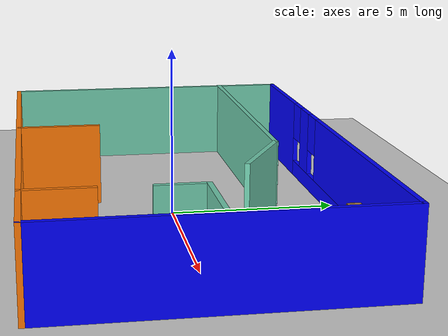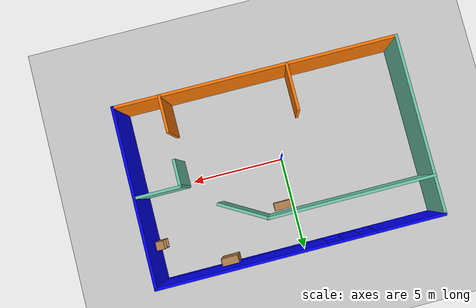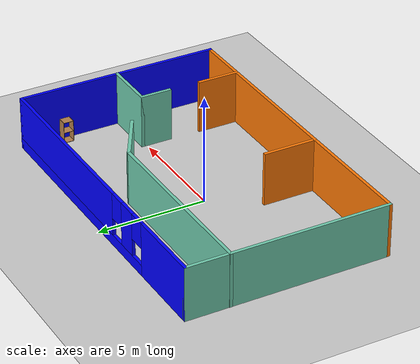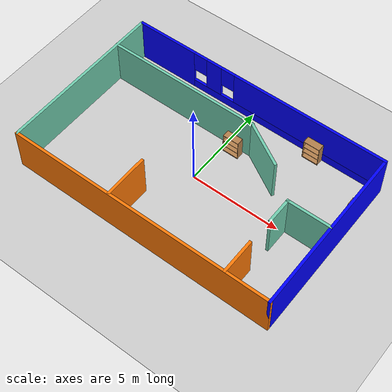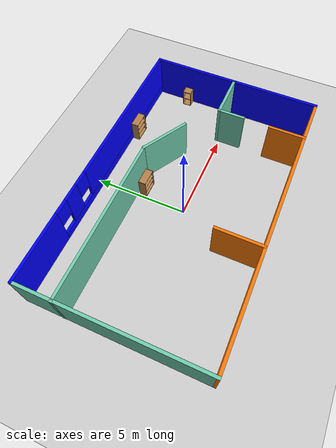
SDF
<sdf version="1.6">
 <world name="default">
  <light name="sun" type="directional">
   <pose>0 0 10 0 -0 0</pose>
   <diffuse>0.8 0.8 0.8 1</diffuse>
   <specular>0.2 0.2 0.2 1</specular>
   <attenuation>
    <range>1000</range>
    <constant>0.9</constant>
    <linear>0.01</linear>
    <quadratic>0.001</quadratic>
   </attenuation>
   <direction>-0.5 0.1 -0.9</direction>
  </light>
  <model name="ground_plane">
   <static>1</static>
   <link name="link">
    <collision name="collision">
     <geometry><plane><normal>0 0 1</normal><size>100 100</size></plane></geometry>
     <surface>
      <contact><collide_bitmask>65535</collide_bitmask></contact>
      <friction><ode><mu>100</mu><mu2>50</mu2></ode></friction>
     </surface>
    </collision>
    <visual name="visual">
     <cast_shadows>0</cast_shadows>
     <geometry><plane><normal>0 0 1</normal><size>100 100</size></plane></geometry>
     <material>
      <script><uri>file://media/materials/scripts/gazebo.material</uri><name>Gazebo/Grey</name></script>
     </material>
    </visual>
   </link>
  </model>
  <gravity>0 0 -9.8</gravity>
  <magnetic_field>6e-06 2.3e-05 -4.2e-05</magnetic_field>
  <atmosphere type="adiabatic"/>
  <physics name="default_physics" default="0" type="ode">
   <max_step_size>0.001</max_step_size>
   <real_time_factor>1</real_time_factor>
   <real_time_update_rate>1000</real_time_update_rate>
  </physics>
  <scene><ambient>0.4 0.4 0.4 1</ambient><background>0.7 0.7 0.7 1</background><shadows>1</shadows></scene>
  <spherical_coordinates>
   <surface_model>EARTH_WGS84</surface_model>
   <latitude_deg>0</latitude_deg>
   <longitude_deg>0</longitude_deg>
   <elevation>0</elevation>
   <heading_deg>0</heading_deg>
  </spherical_coordinates>
  <model name="building">
   <pose>0.231574 0.143373 0 0 -0 0</pose>
   <link name="Wall_10">
    <collision name="Wall_10_Collision">
     <geometry><box><size>9.5 0.15 2.5</size></box></geometry>
     <pose>0 0 1.25 0 -0 0</pose>
    </collision>
    <visual name="Wall_10_Visual">
     <pose>0 0 1.25 0 -0 0</pose>
     <geometry><box><size>9.5 0.15 2.5</size></box></geometry>
     <material>
      <script><uri>file://media/materials/scripts/gazebo.material</uri><name>Gazebo/Grey</name></script>
      <ambient>0 0 1 1</ambient>
     </material>
     <meta><layer>0</layer></meta>
    </visual>
    <pose>7.43187 0 0 0 0 -1.5708</pose>
   </link>
   <link name="Wall_12">
    <collision name="Wall_12_Collision">
     <geometry><box><size>2 0.15 2.5</size></box></geometry>
     <pose>0 0 1.25 0 -0 0</pose>
    </collision>
    <visual name="Wall_12_Visual">
     <pose>0 0 1.25 0 -0 0</pose>
     <geometry><box><size>2 0.15 2.5</size></box></geometry>
     <material>
      <script><uri>file://media/materials/scripts/gazebo.material</uri><name>Gazebo/Grey</name></script>
      <ambient>0.996078 0.47451 0.0196078 1</ambient>
     </material>
     <meta><layer>0</layer></meta>
    </visual>
    <pose>5.01414 -3.74938 0 0 -0 1.5708</pose>
   </link>
   <link name="Wall_16">
    <collision name="Wall_16_Collision">
     <geometry><box><size>2.5 0.15 2.5</size></box></geometry>
     <pose>0 0 1.25 0 -0 0</pose>
    </collision>
    <visual name="Wall_16_Visual">
     <pose>0 0 1.25 0 -0 0</pose>
     <geometry><box><size>2.5 0.15 2.5</size></box></geometry>
     <material>
      <script><uri>file://media/materials/scripts/gazebo.material</uri><name>Gazebo/Grey</name></script>
      <ambient>0.435294 0.796078 0.67451 1</ambient>
     </material>
     <meta><layer>0</layer></meta>
    </visual>
    <pose>6.24248 0.034966 0 0 -0 3.14159</pose>
   </link>
   <link name="Wall_17">
    <collision name="Wall_17_Collision">
     <geometry><box><size>1.5 0.15 2.5</size></box></geometry>
     <pose>0 0 1.25 0 -0 0</pose>
    </collision>
    <visual name="Wall_17_Visual">
     <pose>0 0 1.25 0 -0 0</pose>
     <geometry><box><size>1.5 0.15 2.5</size></box></geometry>
     <material>
      <script><uri>file://media/materials/scripts/gazebo.material</uri><name>Gazebo/Grey</name></script>
      <ambient>0.435294 0.796078 0.67451 1</ambient>
     </material>
     <meta><layer>0</layer></meta>
    </visual>
    <pose>5.06748 -0.640034 0 0 0 -1.5708</pose>
   </link>
   <link name="Wall_2">
    <collision name="Wall_2_Collision">
     <geometry><box><size>15 0.15 2.5</size></box></geometry>
     <pose>0 0 1.25 0 -0 0</pose>
    </collision>
    <visual name="Wall_2_Visual">
     <pose>0 0 1.25 0 -0 0</pose>
     <geometry><box><size>15 0.15 2.5</size></box></geometry>
     <material>
      <script><uri>file://media/materials/scripts/gazebo.material</uri><name>Gazebo/Grey</name></script>
      <ambient>0.996078 0.47451 0.0196078 1</ambient>
     </material>
     <meta><layer>0</layer></meta>
    </visual>
    <pose>0.006868 -4.675 0 0 -0 0</pose>
   </link>
   <link name="Wall_22">
    <collision name="Wall_22_Collision">
     <geometry><box><size>8.75 0.15 2.5</size></box></geometry>
     <pose>0 0 1.25 0 -0 0</pose>
    </collision>
    <visual name="Wall_22_Visual">
     <pose>0 0 1.25 0 -0 0</pose>
     <geometry><box><size>8.75 0.15 2.5</size></box></geometry>
     <material>
      <script><uri>file://media/materials/scripts/gazebo.material</uri><name>Gazebo/Grey</name></script>
      <ambient>0.435294 0.796078 0.67451 1</ambient>
     </material>
     <meta><layer>0</layer></meta>
    </visual>
    <pose>-3.13187 2.67382 0 0 -0 0</pose>
   </link>
   <link name="Wall_23">
    <collision name="Wall_23_Collision">
     <geometry><box><size>2.75 0.15 2.5</size></box></geometry>
     <pose>0 0 1.25 0 -0 0</pose>
    </collision>
    <visual name="Wall_23_Visual">
     <pose>0 0 1.25 0 -0 0</pose>
     <geometry><box><size>2.75 0.15 2.5</size></box></geometry>
     <material>
      <script><uri>file://media/materials/scripts/gazebo.material</uri><name>Gazebo/Grey</name></script>
      <ambient>0.435294 0.796078 0.67451 1</ambient>
     </material>
     <meta><layer>0</layer></meta>
    </visual>
    <pose>2.29396 2.02382 0 0 0 -0.523599</pose>
   </link>
   <link name="Wall_28">
    <collision name="Wall_28_Collision">
     <geometry><box><size>2.5 0.15 2.5</size></box></geometry>
     <pose>0 0 1.25 0 -0 0</pose>
    </collision>
    <visual name="Wall_28_Visual">
     <pose>0 0 1.25 0 -0 0</pose>
     <geometry><box><size>2.5 0.15 2.5</size></box></geometry>
     <material>
      <script><uri>file://media/materials/scripts/gazebo.material</uri><name>Gazebo/Grey</name></script>
      <ambient>0.996078 0.47451 0.0196078 1</ambient>
     </material>
     <meta><layer>0</layer></meta>
    </visual>
    <pose>-1.64634 -3.45269 0 0 -0 1.5708</pose>
   </link>
   <link name="Wall_7">
    <collision name="Wall_7_Collision">
     <geometry><box><size>9.5 0.15 2.5</size></box></geometry>
     <pose>0 0 1.25 0 -0 0</pose>
    </collision>
    <visual name="Wall_7_Visual">
     <pose>0 0 1.25 0 -0 0</pose>
     <geometry><box><size>9.5 0.15 2.5</size></box></geometry>
     <material>
      <script><uri>file://media/materials/scripts/gazebo.material</uri><name>Gazebo/Grey</name></script>
      <ambient>0.435294 0.796078 0.67451 1</ambient>
     </material>
     <meta><layer>0</layer></meta>
    </visual>
    <pose>-7.41813 0 0 0 -0 1.5708</pose>
   </link>
   <link name="Wall_8">
    <pose>0.006868 4.675 0 0 -0 0</pose>
    <visual name="Wall_8_Visual_0">
     <pose>-5.69815 0 1.25 0 -0 0</pose>
     <geometry><box><size>3.6037 0.15 2.5</size></box></geometry>
     <material>
      <script><uri>file://media/materials/scripts/gazebo.material</uri><name>Gazebo/Grey</name></script>
      <ambient>0 0 1 1</ambient>
     </material>
     <meta><layer>0</layer></meta>
    </visual>
    <collision name="Wall_8_Collision_0">
     <geometry><box><size>3.6037 0.15 2.5</size></box></geometry>
     <pose>-5.69815 0 1.25 0 -0 0</pose>
    </collision>
    <visual name="Wall_8_Visual_1">
     <pose>1.80185 0 0.25 0 -0 0</pose>
     <geometry><box><size>11.3963 0.15 0.5</size></box></geometry>
     <material>
      <script><uri>file://media/materials/scripts/gazebo.material</uri><name>Gazebo/Grey</name></script>
      <ambient>0 0 1 1</ambient>
     </material>
     <meta><layer>0</layer></meta>
    </visual>
    <collision name="Wall_8_Collision_1">
     <geometry><box><size>11.3963 0.15 0.5</size></box></geometry>
     <pose>1.80185 0 0.25 0 -0 0</pose>
    </collision>
    <visual name="Wall_8_Visual_2">
     <pose>-2.63174 0 1.5 0 -0 0</pose>
     <geometry><box><size>0.929126 0.15 2</size></box></geometry>
     <material>
      <script><uri>file://media/materials/scripts/gazebo.material</uri><name>Gazebo/Grey</name></script>
      <ambient>0 0 1 1</ambient>
     </material>
     <meta><layer>0</layer></meta>
    </visual>
    <collision name="Wall_8_Collision_2">
     <geometry><box><size>0.929126 0.15 2</size></box></geometry>
     <pose>-2.63174 0 1.5 0 -0 0</pose>
    </collision>
    <visual name="Wall_8_Visual_3">
     <pose>3.06641 0 1.5 0 -0 0</pose>
     <geometry><box><size>8.86718 0.15 2</size></box></geometry>
     <material>
      <script><uri>file://media/materials/scripts/gazebo.material</uri><name>Gazebo/Grey</name></script>
      <ambient>0 0 1 1</ambient>
     </material>
     <meta><layer>0</layer></meta>
    </visual>
    <collision name="Wall_8_Collision_3">
     <geometry><box><size>8.86718 0.15 2</size></box></geometry>
     <pose>3.06641 0 1.5 0 -0 0</pose>
    </collision>
    <visual name="Wall_8_Visual_4">
     <pose>-3.4963 0 1.9 0 -0 0</pose>
     <geometry><box><size>0.8 0.15 1.2</size></box></geometry>
     <material>
      <script><uri>file://media/materials/scripts/gazebo.material</uri><name>Gazebo/Grey</name></script>
      <ambient>0 0 1 1</ambient>
     </material>
     <meta><layer>0</layer></meta>
    </visual>
    <collision name="Wall_8_Collision_4">
     <geometry><box><size>0.8 0.15 1.2</size></box></geometry>
     <pose>-3.4963 0 1.9 0 -0 0</pose>
    </collision>
    <visual name="Wall_8_Visual_5">
     <pose>-1.76718 0 1.9 0 -0 0</pose>
     <geometry><box><size>0.8 0.15 1.2</size></box></geometry>
     <material>
      <script><uri>file://media/materials/scripts/gazebo.material</uri><name>Gazebo/Grey</name></script>
      <ambient>0 0 1 1</ambient>
     </material>
     <meta><layer>0</layer></meta>
    </visual>
    <collision name="Wall_8_Collision_5">
     <geometry><box><size>0.8 0.15 1.2</size></box></geometry>
     <pose>-1.76718 0 1.9 0 -0 0</pose>
    </collision>
   </link>
   <static>1</static>
  </model>
  <model name="cabinet">
   <static>1</static>
   <link name="cabinet_bottom_plate">
    <inertial>
     <pose>0 0 -1 0 -0 0</pose>
     <inertia><ixx>2.05</ixx><ixy>0</ixy><ixz>0</ixz><iyy>2.05</iyy><iyz>0</iyz><izz>2.05</izz></inertia>
     <mass>25</mass>
    </inertial>
    <collision name="cabinet_bottom_plate_geom">
     <pose>0 0 0.01 0 -0 0</pose>
     <geometry><box><size>0.45 0.45 0.02</size></box></geometry>
    </collision>
    <visual name="cabinet_bottom_plate_geom_visual">
     <pose>0 0 0.01 0 -0 0</pose>
     <geometry><box><size>0.45 0.45 0.02</size></box></geometry>
     <material>
      <script><uri>file://media/materials/scripts/gazebo.material</uri><name>Gazebo/Wood</name></script>
     </material>
    </visual>
    <collision name="cabinet_bottom_plate_geom_cabinet_back_plate">
     <pose>0.235 0 0.51 0 -0 0</pose>
     <geometry><box><size>0.02 0.45 1.02</size></box></geometry>
    </collision>
    <visual name="cabinet_bottom_plate_geom_cabinet_back_plate_visual">
     <pose>0.235 0 0.51 0 -0 0</pose>
     <geometry><box><size>0.02 0.45 1.02</size></box></geometry>
     <material>
      <script><uri>file://media/materials/scripts/gazebo.material</uri><name>Gazebo/Wood</name></script>
     </material>
    </visual>
    <collision name="cabinet_bottom_plate_geom_cabinet_left_plate">
     <pose>0 0.235 0.51 0 -0 0</pose>
     <geometry><box><size>0.45 0.02 1.02</size></box></geometry>
    </collision>
    <visual name="cabinet_bottom_plate_geom_cabinet_left_plate_visual">
     <pose>0 0.235 0.51 0 -0 0</pose>
     <geometry><box><size>0.45 0.02 1.02</size></box></geometry>
     <material>
      <script><uri>file://media/materials/scripts/gazebo.material</uri><name>Gazebo/Wood</name></script>
     </material>
    </visual>
    <collision name="cabinet_bottom_plate_geom_cabinet_middle_plate">
     <pose>0 0 0.51 0 -0 0</pose>
     <geometry><box><size>0.45 0.45 0.02</size></box></geometry>
    </collision>
    <visual name="cabinet_bottom_plate_geom_cabinet_middle_plate_visual">
     <pose>0 0 0.51 0 -0 0</pose>
     <geometry><box><size>0.45 0.45 0.02</size></box></geometry>
     <material>
      <script><uri>file://media/materials/scripts/gazebo.material</uri><name>Gazebo/Wood</name></script>
     </material>
    </visual>
    <collision name="cabinet_bottom_plate_geom_cabinet_right_plate">
     <pose>0 -0.235 0.51 0 -0 0</pose>
     <geometry><box><size>0.45 0.02 1.02</size></box></geometry>
    </collision>
    <visual name="cabinet_bottom_plate_geom_cabinet_right_plate_visual">
     <pose>0 -0.235 0.51 0 -0 0</pose>
     <geometry><box><size>0.45 0.02 1.02</size></box></geometry>
     <material>
      <script><uri>file://media/materials/scripts/gazebo.material</uri><name>Gazebo/Wood</name></script>
     </material>
    </visual>
    <collision name="cabinet_bottom_plate_geom_cabinet_top_plate">
     <pose>0 0 1.01 0 -0 0</pose>
     <geometry><box><size>0.45 0.45 0.02</size></box></geometry>
    </collision>
    <visual name="cabinet_bottom_plate_geom_cabinet_top_plate_visual">
     <pose>0 0 1.01 0 -0 0</pose>
     <geometry><box><size>0.45 0.45 0.02</size></box></geometry>
     <material>
      <script><uri>file://media/materials/scripts/gazebo.material</uri><name>Gazebo/Wood</name></script>
     </material>
    </visual>
   </link>
   <pose>7.38605 2.86463 0 0 -0 0</pose>
  </model>
  <model name="bookshelf">
   <static>1</static>
   <link name="link">
    <inertial><mass>1</mass></inertial>
    <collision name="back">
     <pose>0 0.005 0.6 0 -0 0</pose>
     <geometry><box><size>0.9 0.01 1.2</size></box></geometry>
    </collision>
    <visual name="visual1">
     <pose>0 0.005 0.6 0 -0 0</pose>
     <geometry><box><size>0.9 0.01 1.2</size></box></geometry>
     <material>
      <script><uri>file://media/materials/scripts/gazebo.material</uri><name>Gazebo/Wood</name></script>
     </material>
    </visual>
    <collision name="left_side">
     <pose>0.45 -0.195 0.6 0 -0 0</pose>
     <geometry><box><size>0.02 0.4 1.2</size></box></geometry>
    </collision>
    <visual name="visual2">
     <pose>0.45 -0.195 0.6 0 -0 0</pose>
     <geometry><box><size>0.02 0.4 1.2</size></box></geometry>
     <material>
      <script><uri>file://media/materials/scripts/gazebo.material</uri><name>Gazebo/Wood</name></script>
     </material>
    </visual>
    <collision name="right_side">
     <pose>-0.45 -0.195 0.6 0 -0 0</pose>
     <geometry><box><size>0.02 0.4 1.2</size></box></geometry>
    </collision>
    <visual name="visual3">
     <pose>-0.45 -0.195 0.6 0 -0 0</pose>
     <geometry><box><size>0.02 0.4 1.2</size></box></geometry>
     <material>
      <script><uri>file://media/materials/scripts/gazebo.material</uri><name>Gazebo/Wood</name></script>
     </material>
    </visual>
    <collision name="bottom">
     <pose>0 -0.195 0.03 0 -0 0</pose>
     <geometry><box><size>0.88 0.4 0.06</size></box></geometry>
    </collision>
    <visual name="visual4">
     <pose>0 -0.195 0.03 0 -0 0</pose>
     <geometry><box><size>0.88 0.4 0.06</size></box></geometry>
     <material>
      <script><uri>file://media/materials/scripts/gazebo.material</uri><name>Gazebo/Wood</name></script>
     </material>
    </visual>
    <collision name="top">
     <pose>0 -0.195 1.19 0 -0 0</pose>
     <geometry><box><size>0.88 0.4 0.02</size></box></geometry>
    </collision>
    <visual name="visual5">
     <pose>0 -0.195 1.19 0 -0 0</pose>
     <geometry><box><size>0.88 0.4 0.02</size></box></geometry>
     <material>
      <script><uri>file://media/materials/scripts/gazebo.material</uri><name>Gazebo/Wood</name></script>
     </material>
    </visual>
    <collision name="low_shelf">
     <pose>0 -0.195 0.43 0 -0 0</pose>
     <geometry><box><size>0.88 0.4 0.02</size></box></geometry>
    </collision>
    <visual name="visual6">
     <pose>0 -0.195 0.43 0 -0 0</pose>
     <geometry><box><size>0.88 0.4 0.02</size></box></geometry>
     <material>
      <script><uri>file://media/materials/scripts/gazebo.material</uri><name>Gazebo/Wood</name></script>
     </material>
    </visual>
    <collision name="high_shelf">
     <pose>0 -0.195 0.8 0 -0 0</pose>
     <geometry><box><size>0.88 0.4 0.02</size></box></geometry>
    </collision>
    <visual name="visual7">
     <pose>0 -0.195 0.8 0 -0 0</pose>
     <geometry><box><size>0.88 0.4 0.02</size></box></geometry>
     <material>
      <script><uri>file://media/materials/scripts/gazebo.material</uri><name>Gazebo/Wood</name></script>
     </material>
    </visual>
   </link>
   <pose>0.575183 2.61019 0 0 -0 0</pose>
  </model>
  <model name="bookshelf_0">
   <static>1</static>
   <link name="link">
    <inertial><mass>1</mass></inertial>
    <collision name="back">
     <pose>0 0.005 0.6 0 -0 0</pose>
     <geometry><box><size>0.9 0.01 1.2</size></box></geometry>
    </collision>
    <visual name="visual1">
     <pose>0 0.005 0.6 0 -0 0</pose>
     <geometry><box><size>0.9 0.01 1.2</size></box></geometry>
     <material>
      <script><uri>file://media/materials/scripts/gazebo.material</uri><name>Gazebo/Wood</name></script>
     </material>
    </visual>
    <collision name="left_side">
     <pose>0.45 -0.195 0.6 0 -0 0</pose>
     <geometry><box><size>0.02 0.4 1.2</size></box></geometry>
    </collision>
    <visual name="visual2">
     <pose>0.45 -0.195 0.6 0 -0 0</pose>
     <geometry><box><size>0.02 0.4 1.2</size></box></geometry>
     <material>
      <script><uri>file://media/materials/scripts/gazebo.material</uri><name>Gazebo/Wood</name></script>
     </material>
    </visual>
    <collision name="right_side">
     <pose>-0.45 -0.195 0.6 0 -0 0</pose>
     <geometry><box><size>0.02 0.4 1.2</size></box></geometry>
    </collision>
    <visual name="visual3">
     <pose>-0.45 -0.195 0.6 0 -0 0</pose>
     <geometry><box><size>0.02 0.4 1.2</size></box></geometry>
     <material>
      <script><uri>file://media/materials/scripts/gazebo.material</uri><name>Gazebo/Wood</name></script>
     </material>
    </visual>
    <collision name="bottom">
     <pose>0 -0.195 0.03 0 -0 0</pose>
     <geometry><box><size>0.88 0.4 0.06</size></box></geometry>
    </collision>
    <visual name="visual4">
     <pose>0 -0.195 0.03 0 -0 0</pose>
     <geometry><box><size>0.88 0.4 0.06</size></box></geometry>
     <material>
      <script><uri>file://media/materials/scripts/gazebo.material</uri><name>Gazebo/Wood</name></script>
     </material>
    </visual>
    <collision name="top">
     <pose>0 -0.195 1.19 0 -0 0</pose>
     <geometry><box><size>0.88 0.4 0.02</size></box></geometry>
    </collision>
    <visual name="visual5">
     <pose>0 -0.195 1.19 0 -0 0</pose>
     <geometry><box><size>0.88 0.4 0.02</size></box></geometry>
     <material>
      <script><uri>file://media/materials/scripts/gazebo.material</uri><name>Gazebo/Wood</name></script>
     </material>
    </visual>
    <collision name="low_shelf">
     <pose>0 -0.195 0.43 0 -0 0</pose>
     <geometry><box><size>0.88 0.4 0.02</size></box></geometry>
    </collision>
    <visual name="visual6">
     <pose>0 -0.195 0.43 0 -0 0</pose>
     <geometry><box><size>0.88 0.4 0.02</size></box></geometry>
     <material>
      <script><uri>file://media/materials/scripts/gazebo.material</uri><name>Gazebo/Wood</name></script>
     </material>
    </visual>
    <collision name="high_shelf">
     <pose>0 -0.195 0.8 0 -0 0</pose>
     <geometry><box><size>0.88 0.4 0.02</size></box></geometry>
    </collision>
    <visual name="visual7">
     <pose>0 -0.195 0.8 0 -0 0</pose>
     <geometry><box><size>0.88 0.4 0.02</size></box></geometry>
     <material>
      <script><uri>file://media/materials/scripts/gazebo.material</uri><name>Gazebo/Wood</name></script>
     </material>
    </visual>
   </link>
   <pose>3.94938 4.72874 0 0 -0 0</pose>
  </model>
  <plugin filename="libcollision_map_creator.so" name="collision_map_creator"/>
 </world>
</sdf>
